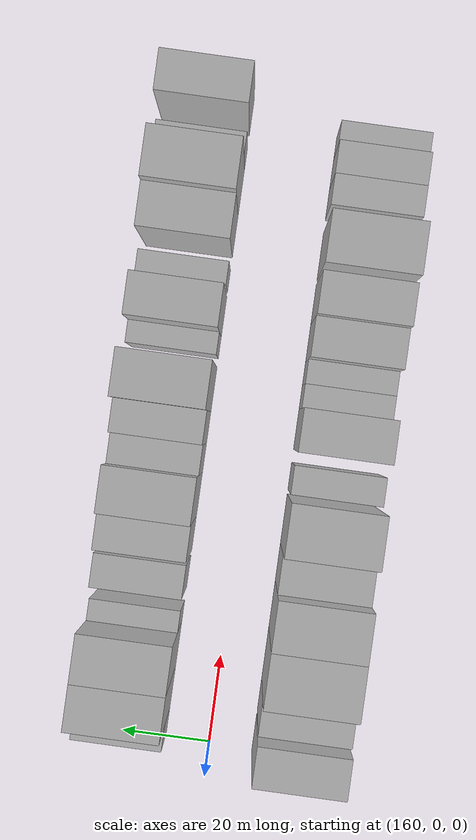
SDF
<sdf version="1.6">
 <world name="default">
  <model name="building_17">
   <static>1</static>
   <pose>163.5478 20.0000 0 0.000000 0.000000 1.570796</pose>
   <link name="link">
    <pose>0 0 6.00 0 0 0</pose>
    <collision name="collision"><geometry><box><size>20.0000 5.8207 12.0000</size></box></geometry></collision>
    <visual name="visual">
     <cast_shadows>0</cast_shadows>
     <geometry><box><size>20.0000 5.8207 12.0000</size></box></geometry>
     <material>
      <script>
       <uri>model://HANNAS_wall/materials/scripts</uri>
       <uri>model://HANNAS_wall/materials/textures</uri>
       <name>vrc/HANNAS_wall</name>
      </script>
     </material>
    </visual>
   </link>
  </model>
  <model name="building_18">
   <static>1</static>
   <pose>171.3626 20.0000 0 0.000000 0.000000 1.570796</pose>
   <link name="link">
    <pose>0 0 12.00 0 0 0</pose>
    <collision name="collision"><geometry><box><size>20.0000 9.8091 24.0000</size></box></geometry></collision>
    <visual name="visual">
     <cast_shadows>0</cast_shadows>
     <geometry><box><size>20.0000 9.8091 24.0000</size></box></geometry>
     <material>
      <script>
       <uri>model://HANNAS_wall/materials/scripts</uri>
       <uri>model://HANNAS_wall/materials/textures</uri>
       <name>vrc/HANNAS_wall</name>
      </script>
     </material>
    </visual>
   </link>
  </model>
  <model name="building_19">
   <static>1</static>
   <pose>181.4754 20.0000 0 0.000000 0.000000 1.570796</pose>
   <link name="link">
    <pose>0 0 12.00 0 0 0</pose>
    <collision name="collision"><geometry><box><size>20.0000 10.4164 24.0000</size></box></geometry></collision>
    <visual name="visual">
     <cast_shadows>0</cast_shadows>
     <geometry><box><size>20.0000 10.4164 24.0000</size></box></geometry>
     <material>
      <script>
       <uri>model://HANNAS_wall/materials/scripts</uri>
       <uri>model://HANNAS_wall/materials/textures</uri>
       <name>vrc/HANNAS_wall</name>
      </script>
     </material>
    </visual>
   </link>
  </model>
  <model name="building_20">
   <static>1</static>
   <pose>189.0903 20.0000 0 0.000000 0.000000 1.570796</pose>
   <link name="link">
    <pose>0 0 6.00 0 0 0</pose>
    <collision name="collision"><geometry><box><size>20.0000 4.8135 12.0000</size></box></geometry></collision>
    <visual name="visual">
     <cast_shadows>0</cast_shadows>
     <geometry><box><size>20.0000 4.8135 12.0000</size></box></geometry>
     <material>
      <script>
       <uri>model://HANNAS_wall/materials/scripts</uri>
       <uri>model://HANNAS_wall/materials/textures</uri>
       <name>vrc/HANNAS_wall</name>
      </script>
     </material>
    </visual>
   </link>
  </model>
  <model name="building_21">
   <static>1</static>
   <pose>198.2277 20.0000 0 0.000000 0.000000 1.570796</pose>
   <link name="link">
    <pose>0 0 7.50 0 0 0</pose>
    <collision name="collision"><geometry><box><size>20.0000 7.4613 15.0000</size></box></geometry></collision>
    <visual name="visual">
     <cast_shadows>0</cast_shadows>
     <geometry><box><size>20.0000 7.4613 15.0000</size></box></geometry>
     <material>
      <script>
       <uri>model://HANNAS_wall/materials/scripts</uri>
       <uri>model://HANNAS_wall/materials/textures</uri>
       <name>vrc/HANNAS_wall</name>
      </script>
     </material>
    </visual>
   </link>
  </model>
  <model name="building_22">
   <static>1</static>
   <pose>206.9759 20.0000 0 0.000000 0.000000 1.570796</pose>
   <link name="link">
    <pose>0 0 9.00 0 0 0</pose>
    <collision name="collision"><geometry><box><size>20.0000 8.0350 18.0000</size></box></geometry></collision>
    <visual name="visual">
     <cast_shadows>0</cast_shadows>
     <geometry><box><size>20.0000 8.0350 18.0000</size></box></geometry>
     <material>
      <script>
       <uri>model://HANNAS_wall/materials/scripts</uri>
       <uri>model://HANNAS_wall/materials/textures</uri>
       <name>vrc/HANNAS_wall</name>
      </script>
     </material>
    </visual>
   </link>
  </model>
  <model name="building_23">
   <static>1</static>
   <pose>216.0809 20.0000 0 0.000000 0.000000 1.570796</pose>
   <link name="link">
    <pose>0 0 10.50 0 0 0</pose>
    <collision name="collision"><geometry><box><size>20.0000 10.1751 21.0000</size></box></geometry></collision>
    <visual name="visual">
     <cast_shadows>0</cast_shadows>
     <geometry><box><size>20.0000 10.1751 21.0000</size></box></geometry>
     <material>
      <script>
       <uri>model://HANNAS_wall/materials/scripts</uri>
       <uri>model://HANNAS_wall/materials/textures</uri>
       <name>vrc/HANNAS_wall</name>
      </script>
     </material>
    </visual>
   </link>
  </model>
  <model name="building_24">
   <static>1</static>
   <pose>224.5500 20.0000 0 0.000000 0.000000 1.570796</pose>
   <link name="link">
    <pose>0 0 7.50 0 0 0</pose>
    <collision name="collision"><geometry><box><size>20.0000 6.7630 15.0000</size></box></geometry></collision>
    <visual name="visual">
     <cast_shadows>0</cast_shadows>
     <geometry><box><size>20.0000 6.7630 15.0000</size></box></geometry>
     <material>
      <script>
       <uri>model://HANNAS_wall/materials/scripts</uri>
       <uri>model://HANNAS_wall/materials/textures</uri>
       <name>vrc/HANNAS_wall</name>
      </script>
     </material>
    </visual>
   </link>
  </model>
  <model name="building_25">
   <static>1</static>
   <pose>231.6264 20.0000 0 0.000000 0.000000 1.570796</pose>
   <link name="link">
    <pose>0 0 9.00 0 0 0</pose>
    <collision name="collision"><geometry><box><size>20.0000 7.3898 18.0000</size></box></geometry></collision>
    <visual name="visual">
     <cast_shadows>0</cast_shadows>
     <geometry><box><size>20.0000 7.3898 18.0000</size></box></geometry>
     <material>
      <script>
       <uri>model://HANNAS_wall/materials/scripts</uri>
       <uri>model://HANNAS_wall/materials/textures</uri>
       <name>vrc/HANNAS_wall</name>
      </script>
     </material>
    </visual>
   </link>
  </model>
  <model name="building_26">
   <static>1</static>
   <pose>240.4442 20.0000 0 0.000000 0.000000 1.570796</pose>
   <link name="link">
    <pose>0 0 12.00 0 0 0</pose>
    <collision name="collision"><geometry><box><size>20.0000 10.2458 24.0000</size></box></geometry></collision>
    <visual name="visual">
     <cast_shadows>0</cast_shadows>
     <geometry><box><size>20.0000 10.2458 24.0000</size></box></geometry>
     <material>
      <script>
       <uri>model://HANNAS_wall/materials/scripts</uri>
       <uri>model://HANNAS_wall/materials/textures</uri>
       <name>vrc/HANNAS_wall</name>
      </script>
     </material>
    </visual>
   </link>
  </model>
  <model name="building_27">
   <static>1</static>
   <pose>250.0642 20.0000 0 0.000000 0.000000 1.570796</pose>
   <link name="link">
    <pose>0 0 6.00 0 0 0</pose>
    <collision name="collision"><geometry><box><size>20.0000 4.9942 12.0000</size></box></geometry></collision>
    <visual name="visual">
     <cast_shadows>0</cast_shadows>
     <geometry><box><size>20.0000 4.9942 12.0000</size></box></geometry>
     <material>
      <script>
       <uri>model://HANNAS_wall/materials/scripts</uri>
       <uri>model://HANNAS_wall/materials/textures</uri>
       <name>vrc/HANNAS_wall</name>
      </script>
     </material>
    </visual>
   </link>
  </model>
  <model name="building_28">
   <static>1</static>
   <pose>257.1927 20.0000 0 0.000000 0.000000 1.570796</pose>
   <link name="link">
    <pose>0 0 10.50 0 0 0</pose>
    <collision name="collision"><geometry><box><size>20.0000 9.2628 21.0000</size></box></geometry></collision>
    <visual name="visual">
     <cast_shadows>0</cast_shadows>
     <geometry><box><size>20.0000 9.2628 21.0000</size></box></geometry>
     <material>
      <script>
       <uri>model://HANNAS_wall/materials/scripts</uri>
       <uri>model://HANNAS_wall/materials/textures</uri>
       <name>vrc/HANNAS_wall</name>
      </script>
     </material>
    </visual>
   </link>
  </model>
  <model name="building_29">
   <static>1</static>
   <pose>265.4251 20.0000 0 0.000000 0.000000 1.570796</pose>
   <link name="link">
    <pose>0 0 6.00 0 0 0</pose>
    <collision name="collision"><geometry><box><size>20.0000 5.2021 12.0000</size></box></geometry></collision>
    <visual name="visual">
     <cast_shadows>0</cast_shadows>
     <geometry><box><size>20.0000 5.2021 12.0000</size></box></geometry>
     <material>
      <script>
       <uri>model://HANNAS_wall/materials/scripts</uri>
       <uri>model://HANNAS_wall/materials/textures</uri>
       <name>vrc/HANNAS_wall</name>
      </script>
     </material>
    </visual>
   </link>
  </model>
  <model name="building_30">
   <static>1</static>
   <pose>275.7884 20.0000 0 0.000000 0.000000 1.570796</pose>
   <link name="link">
    <pose>0 0 10.50 0 0 0</pose>
    <collision name="collision"><geometry><box><size>20.0000 9.5245 21.0000</size></box></geometry></collision>
    <visual name="visual">
     <cast_shadows>0</cast_shadows>
     <geometry><box><size>20.0000 9.5245 21.0000</size></box></geometry>
     <material>
      <script>
       <uri>model://HANNAS_wall/materials/scripts</uri>
       <uri>model://HANNAS_wall/materials/textures</uri>
       <name>vrc/HANNAS_wall</name>
      </script>
     </material>
    </visual>
   </link>
  </model>
  <model name="building_31">
   <static>1</static>
   <pose>285.9684 20.0000 0 0.000000 0.000000 1.570796</pose>
   <link name="link">
    <pose>0 0 12.00 0 0 0</pose>
    <collision name="collision"><geometry><box><size>20.0000 10.8355 24.0000</size></box></geometry></collision>
    <visual name="visual">
     <cast_shadows>0</cast_shadows>
     <geometry><box><size>20.0000 10.8355 24.0000</size></box></geometry>
     <material>
      <script>
       <uri>model://HANNAS_wall/materials/scripts</uri>
       <uri>model://HANNAS_wall/materials/textures</uri>
       <name>vrc/HANNAS_wall</name>
      </script>
     </material>
    </visual>
   </link>
  </model>
  <model name="building_32">
   <static>1</static>
   <pose>293.8585 20.0000 0 0.000000 0.000000 1.570796</pose>
   <link name="link">
    <pose>0 0 6.00 0 0 0</pose>
    <collision name="collision"><geometry><box><size>20.0000 4.9446 12.0000</size></box></geometry></collision>
    <visual name="visual">
     <cast_shadows>0</cast_shadows>
     <geometry><box><size>20.0000 4.9446 12.0000</size></box></geometry>
     <material>
      <script>
       <uri>model://HANNAS_wall/materials/scripts</uri>
       <uri>model://HANNAS_wall/materials/textures</uri>
       <name>vrc/HANNAS_wall</name>
      </script>
     </material>
    </visual>
   </link>
  </model>
  <model name="building_33">
   <static>1</static>
   <pose>303.7299 20.0000 0 0.000000 0.000000 1.570796</pose>
   <link name="link">
    <pose>0 0 10.50 0 0 0</pose>
    <collision name="collision"><geometry><box><size>20.0000 8.7983 21.0000</size></box></geometry></collision>
    <visual name="visual">
     <cast_shadows>0</cast_shadows>
     <geometry><box><size>20.0000 8.7983 21.0000</size></box></geometry>
     <material>
      <script>
       <uri>model://HANNAS_wall/materials/scripts</uri>
       <uri>model://HANNAS_wall/materials/textures</uri>
       <name>vrc/HANNAS_wall</name>
      </script>
     </material>
    </visual>
   </link>
  </model>
  <model name="building_49">
   <static>1</static>
   <pose>163.5768 -20.0000 0 0.000000 0.000000 1.570796</pose>
   <link name="link">
    <pose>0 0 10.50 0 0 0</pose>
    <collision name="collision"><geometry><box><size>20.0000 8.8010 21.0000</size></box></geometry></collision>
    <visual name="visual">
     <cast_shadows>0</cast_shadows>
     <geometry><box><size>20.0000 8.8010 21.0000</size></box></geometry>
     <material>
      <script>
       <uri>model://HANNAS_wall/materials/scripts</uri>
       <uri>model://HANNAS_wall/materials/textures</uri>
       <name>vrc/HANNAS_wall</name>
      </script>
     </material>
    </visual>
   </link>
  </model>
  <model name="building_50">
   <static>1</static>
   <pose>172.6475 -20.0000 0 0.000000 0.000000 1.570796</pose>
   <link name="link">
    <pose>0 0 9.00 0 0 0</pose>
    <collision name="collision"><geometry><box><size>20.0000 7.3405 18.0000</size></box></geometry></collision>
    <visual name="visual">
     <cast_shadows>0</cast_shadows>
     <geometry><box><size>20.0000 7.3405 18.0000</size></box></geometry>
     <material>
      <script>
       <uri>model://HANNAS_wall/materials/scripts</uri>
       <uri>model://HANNAS_wall/materials/textures</uri>
       <name>vrc/HANNAS_wall</name>
      </script>
     </material>
    </visual>
   </link>
  </model>
  <model name="building_51">
   <static>1</static>
   <pose>182.2365 -20.0000 0 0.000000 0.000000 1.570796</pose>
   <link name="link">
    <pose>0 0 12.00 0 0 0</pose>
    <collision name="collision"><geometry><box><size>20.0000 11.8375 24.0000</size></box></geometry></collision>
    <visual name="visual">
     <cast_shadows>0</cast_shadows>
     <geometry><box><size>20.0000 11.8375 24.0000</size></box></geometry>
     <material>
      <script>
       <uri>model://HANNAS_wall/materials/scripts</uri>
       <uri>model://HANNAS_wall/materials/textures</uri>
       <name>vrc/HANNAS_wall</name>
      </script>
     </material>
    </visual>
   </link>
  </model>
  <model name="building_52">
   <static>1</static>
   <pose>193.5745 -20.0000 0 0.000000 0.000000 1.570796</pose>
   <link name="link">
    <pose>0 0 12.00 0 0 0</pose>
    <collision name="collision"><geometry><box><size>20.0000 10.8384 24.0000</size></box></geometry></collision>
    <visual name="visual">
     <cast_shadows>0</cast_shadows>
     <geometry><box><size>20.0000 10.8384 24.0000</size></box></geometry>
     <material>
      <script>
       <uri>model://HANNAS_wall/materials/scripts</uri>
       <uri>model://HANNAS_wall/materials/textures</uri>
       <name>vrc/HANNAS_wall</name>
      </script>
     </material>
    </visual>
   </link>
  </model>
  <model name="building_53">
   <static>1</static>
   <pose>203.2477 -20.0000 0 0.000000 0.000000 1.570796</pose>
   <link name="link">
    <pose>0 0 9.00 0 0 0</pose>
    <collision name="collision"><geometry><box><size>20.0000 8.5080 18.0000</size></box></geometry></collision>
    <visual name="visual">
     <cast_shadows>0</cast_shadows>
     <geometry><box><size>20.0000 8.5080 18.0000</size></box></geometry>
     <material>
      <script>
       <uri>model://HANNAS_wall/materials/scripts</uri>
       <uri>model://HANNAS_wall/materials/textures</uri>
       <name>vrc/HANNAS_wall</name>
      </script>
     </material>
    </visual>
   </link>
  </model>
  <model name="building_54">
   <static>1</static>
   <pose>213.2515 -20.0000 0 0.000000 0.000000 1.570796</pose>
   <link name="link">
    <pose>0 0 12.00 0 0 0</pose>
    <collision name="collision"><geometry><box><size>20.0000 11.4995 24.0000</size></box></geometry></collision>
    <visual name="visual">
     <cast_shadows>0</cast_shadows>
     <geometry><box><size>20.0000 11.4995 24.0000</size></box></geometry>
     <material>
      <script>
       <uri>model://HANNAS_wall/materials/scripts</uri>
       <uri>model://HANNAS_wall/materials/textures</uri>
       <name>vrc/HANNAS_wall</name>
      </script>
     </material>
    </visual>
   </link>
  </model>
  <model name="building_55">
   <static>1</static>
   <pose>223.1632 -20.0000 0 0.000000 0.000000 1.570796</pose>
   <link name="link">
    <pose>0 0 7.50 0 0 0</pose>
    <collision name="collision"><geometry><box><size>20.0000 6.3238 15.0000</size></box></geometry></collision>
    <visual name="visual">
     <cast_shadows>0</cast_shadows>
     <geometry><box><size>20.0000 6.3238 15.0000</size></box></geometry>
     <material>
      <script>
       <uri>model://HANNAS_wall/materials/scripts</uri>
       <uri>model://HANNAS_wall/materials/textures</uri>
       <name>vrc/HANNAS_wall</name>
      </script>
     </material>
    </visual>
   </link>
  </model>
  <model name="building_56">
   <static>1</static>
   <pose>233.9809 -20.0000 0 0.000000 0.000000 1.570796</pose>
   <link name="link">
    <pose>0 0 10.50 0 0 0</pose>
    <collision name="collision"><geometry><box><size>20.0000 9.3117 21.0000</size></box></geometry></collision>
    <visual name="visual">
     <cast_shadows>0</cast_shadows>
     <geometry><box><size>20.0000 9.3117 21.0000</size></box></geometry>
     <material>
      <script>
       <uri>model://HANNAS_wall/materials/scripts</uri>
       <uri>model://HANNAS_wall/materials/textures</uri>
       <name>vrc/HANNAS_wall</name>
      </script>
     </material>
    </visual>
   </link>
  </model>
  <model name="building_57">
   <static>1</static>
   <pose>241.3429 -20.0000 0 0.000000 0.000000 1.570796</pose>
   <link name="link">
    <pose>0 0 6.00 0 0 0</pose>
    <collision name="collision"><geometry><box><size>20.0000 5.4123 12.0000</size></box></geometry></collision>
    <visual name="visual">
     <cast_shadows>0</cast_shadows>
     <geometry><box><size>20.0000 5.4123 12.0000</size></box></geometry>
     <material>
      <script>
       <uri>model://HANNAS_wall/materials/scripts</uri>
       <uri>model://HANNAS_wall/materials/textures</uri>
       <name>vrc/HANNAS_wall</name>
      </script>
     </material>
    </visual>
   </link>
  </model>
  <model name="building_58">
   <static>1</static>
   <pose>246.7455 -20.0000 0 0.000000 0.000000 1.570796</pose>
   <link name="link">
    <pose>0 0 6.00 0 0 0</pose>
    <collision name="collision"><geometry><box><size>20.0000 5.3928 12.0000</size></box></geometry></collision>
    <visual name="visual">
     <cast_shadows>0</cast_shadows>
     <geometry><box><size>20.0000 5.3928 12.0000</size></box></geometry>
     <material>
      <script>
       <uri>model://HANNAS_wall/materials/scripts</uri>
       <uri>model://HANNAS_wall/materials/textures</uri>
       <name>vrc/HANNAS_wall</name>
      </script>
     </material>
    </visual>
   </link>
  </model>
  <model name="building_59">
   <static>1</static>
   <pose>253.8330 -20.0000 0 0.000000 0.000000 1.570796</pose>
   <link name="link">
    <pose>0 0 9.00 0 0 0</pose>
    <collision name="collision"><geometry><box><size>20.0000 8.7822 18.0000</size></box></geometry></collision>
    <visual name="visual">
     <cast_shadows>0</cast_shadows>
     <geometry><box><size>20.0000 8.7822 18.0000</size></box></geometry>
     <material>
      <script>
       <uri>model://HANNAS_wall/materials/scripts</uri>
       <uri>model://HANNAS_wall/materials/textures</uri>
       <name>vrc/HANNAS_wall</name>
      </script>
     </material>
    </visual>
   </link>
  </model>
  <model name="building_60">
   <static>1</static>
   <pose>262.8031 -20.0000 0 0.000000 0.000000 1.570796</pose>
   <link name="link">
    <pose>0 0 10.50 0 0 0</pose>
    <collision name="collision"><geometry><box><size>20.0000 9.1580 21.0000</size></box></geometry></collision>
    <visual name="visual">
     <cast_shadows>0</cast_shadows>
     <geometry><box><size>20.0000 9.1580 21.0000</size></box></geometry>
     <material>
      <script>
       <uri>model://HANNAS_wall/materials/scripts</uri>
       <uri>model://HANNAS_wall/materials/textures</uri>
       <name>vrc/HANNAS_wall</name>
      </script>
     </material>
    </visual>
   </link>
  </model>
  <model name="building_61">
   <static>1</static>
   <pose>273.9251 -20.0000 0 0.000000 0.000000 1.570796</pose>
   <link name="link">
    <pose>0 0 12.00 0 0 0</pose>
    <collision name="collision"><geometry><box><size>20.0000 11.0862 24.0000</size></box></geometry></collision>
    <visual name="visual">
     <cast_shadows>0</cast_shadows>
     <geometry><box><size>20.0000 11.0862 24.0000</size></box></geometry>
     <material>
      <script>
       <uri>model://HANNAS_wall/materials/scripts</uri>
       <uri>model://HANNAS_wall/materials/textures</uri>
       <name>vrc/HANNAS_wall</name>
      </script>
     </material>
    </visual>
   </link>
  </model>
  <model name="building_62">
   <static>1</static>
   <pose>285.8710 -20.0000 0 0.000000 0.000000 1.570796</pose>
   <link name="link">
    <pose>0 0 7.50 0 0 0</pose>
    <collision name="collision"><geometry><box><size>20.0000 6.8055 15.0000</size></box></geometry></collision>
    <visual name="visual">
     <cast_shadows>0</cast_shadows>
     <geometry><box><size>20.0000 6.8055 15.0000</size></box></geometry>
     <material>
      <script>
       <uri>model://HANNAS_wall/materials/scripts</uri>
       <uri>model://HANNAS_wall/materials/textures</uri>
       <name>vrc/HANNAS_wall</name>
      </script>
     </material>
    </visual>
   </link>
  </model>
  <model name="building_63">
   <static>1</static>
   <pose>292.8623 -20.0000 0 0.000000 0.000000 1.570796</pose>
   <link name="link">
    <pose>0 0 7.50 0 0 0</pose>
    <collision name="collision"><geometry><box><size>20.0000 7.1772 15.0000</size></box></geometry></collision>
    <visual name="visual">
     <cast_shadows>0</cast_shadows>
     <geometry><box><size>20.0000 7.1772 15.0000</size></box></geometry>
     <material>
      <script>
       <uri>model://HANNAS_wall/materials/scripts</uri>
       <uri>model://HANNAS_wall/materials/textures</uri>
       <name>vrc/HANNAS_wall</name>
      </script>
     </material>
    </visual>
   </link>
  </model>
  <model name="building_64">
   <static>1</static>
   <pose>299.0673 -20.0000 0 0.000000 0.000000 1.570796</pose>
   <link name="link">
    <pose>0 0 6.00 0 0 0</pose>
    <collision name="collision"><geometry><box><size>20.0000 5.2330 12.0000</size></box></geometry></collision>
    <visual name="visual">
     <cast_shadows>0</cast_shadows>
     <geometry><box><size>20.0000 5.2330 12.0000</size></box></geometry>
     <material>
      <script>
       <uri>model://HANNAS_wall/materials/scripts</uri>
       <uri>model://HANNAS_wall/materials/textures</uri>
       <name>vrc/HANNAS_wall</name>
      </script>
     </material>
    </visual>
   </link>
  </model>
 </world>
</sdf>
